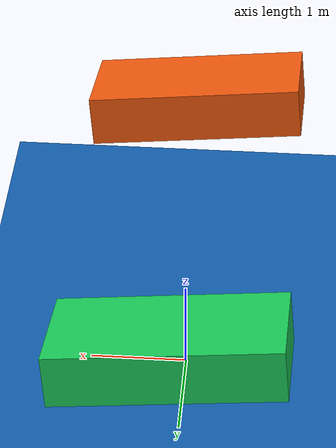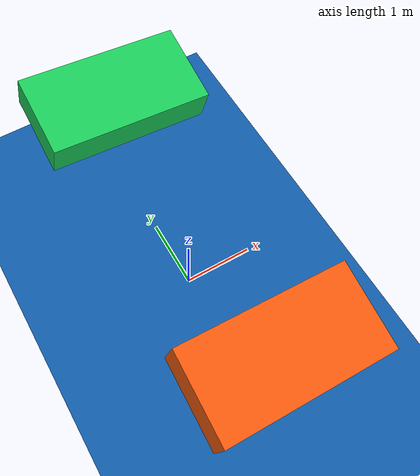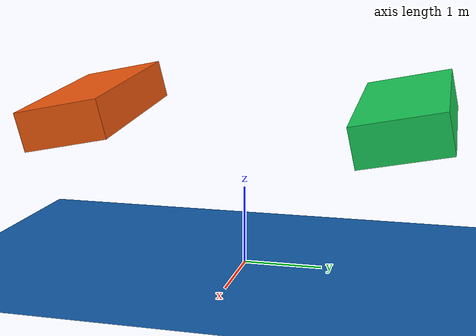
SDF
<?xml version="1.0" ?>
<sdf version="1.10">
  <world name="hydrostatic_stiffness_ab">
    <gravity>0 0 -9.81</gravity>

    <physics name="physics" type="ode">
      <max_step_size>0.004</max_step_size>
      <real_time_factor>1.0</real_time_factor>
    </physics>

    <plugin filename="gz-sim-physics-system" name="gz::sim::systems::Physics"/>
    <plugin filename="gz-sim-user-commands-system" name="gz::sim::systems::UserCommands"/>
    <plugin filename="gz-sim-scene-broadcaster-system" name="gz::sim::systems::SceneBroadcaster"/>

    <light type="directional" name="sun">
      <cast_shadows>true</cast_shadows>
      <pose>0 0 20 0 0 0</pose>
      <diffuse>1 1 1 1</diffuse>
      <specular>0.2 0.2 0.2 1</specular>
      <attenuation>
        <range>1000</range>
        <constant>0.9</constant>
        <linear>0.01</linear>
        <quadratic>0.001</quadratic>
      </attenuation>
      <direction>-0.2 0.1 -0.95</direction>
    </light>

    <model name="water_surface">
      <static>true</static>
      <link name="water_link">
        <visual name="water_visual">
          <pose>0 0 0 0 0 0</pose>
          <geometry>
            <plane>
              <normal>0 0 1</normal>
              <size>300 300</size>
            </plane>
          </geometry>
          <material>
            <ambient>0.06 0.35 0.65 0.45</ambient>
            <diffuse>0.06 0.35 0.65 0.45</diffuse>
            <specular>0.2 0.2 0.25 0.3</specular>
          </material>
        </visual>
      </link>
    </model>

    <model name="usv_baseline">
      <pose>0 -2 2.0 0.2 0.1 0</pose>
      <static>false</static>

      <link name="hull_link">
        <inertial>
          <mass>350.0</mass>
          <inertia>
            <ixx>42.58</ixx>
            <ixy>0.0</ixy>
            <ixz>0.0</ixz>
            <iyy>148.46</iyy>
            <iyz>0.0</iyz>
            <izz>176.46</izz>
          </inertia>
        </inertial>

        <collision name="hull_collision">
          <geometry>
            <box>
              <size>2.2 1.1 0.5</size>
            </box>
          </geometry>
        </collision>

        <visual name="hull_visual">
          <geometry>
            <box>
              <size>2.2 1.1 0.5</size>
            </box>
          </geometry>
          <material>
            <ambient>0.95 0.35 0.05 1</ambient>
            <diffuse>0.95 0.35 0.05 1</diffuse>
            <emissive>0.25 0.1 0.02 1</emissive>
          </material>
        </visual>
      </link>

      <plugin filename="libusv_hydro_system.so" name="usv_hydro::systems::HydroCellSystem">
        <config_file>usv_sim_ws/src/usv_hydro/config/hydro_profiles.yaml</config_file>
        <profile>ab_baseline</profile>
        <link_name>hull_link</link_name>
        <current_velocity>0 0 0</current_velocity>
      </plugin>
    </model>

    <model name="usv_with_stiffness">
      <pose>0 2 2.0 0.2 0.1 0</pose>
      <static>false</static>

      <link name="hull_link">
        <inertial>
          <mass>350.0</mass>
          <inertia>
            <ixx>42.58</ixx>
            <ixy>0.0</ixy>
            <ixz>0.0</ixz>
            <iyy>148.46</iyy>
            <iyz>0.0</iyz>
            <izz>176.46</izz>
          </inertia>
        </inertial>

        <collision name="hull_collision">
          <geometry>
            <box>
              <size>2.2 1.1 0.5</size>
            </box>
          </geometry>
        </collision>

        <visual name="hull_visual">
          <geometry>
            <box>
              <size>2.2 1.1 0.5</size>
            </box>
          </geometry>
          <material>
            <ambient>0.1 0.8 0.35 1</ambient>
            <diffuse>0.1 0.8 0.35 1</diffuse>
            <emissive>0.03 0.25 0.08 1</emissive>
          </material>
        </visual>
      </link>

      <plugin filename="libusv_hydro_system.so" name="usv_hydro::systems::HydroCellSystem">
        <config_file>usv_sim_ws/src/usv_hydro/config/hydro_profiles.yaml</config_file>
        <profile>ab_stiffness</profile>
        <link_name>hull_link</link_name>
        <current_velocity>0 0 0</current_velocity>
      </plugin>
    </model>

    <scene>
      <ambient>0.7 0.7 0.7 1</ambient>
      <background>0.72 0.86 0.98 1</background>
      <shadows>true</shadows>
    </scene>
  </world>
</sdf>
